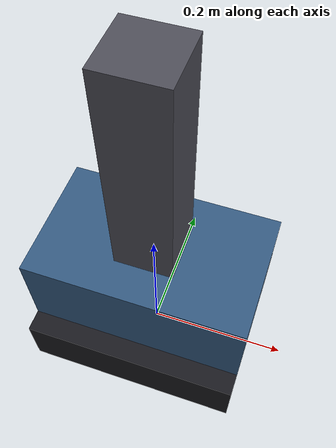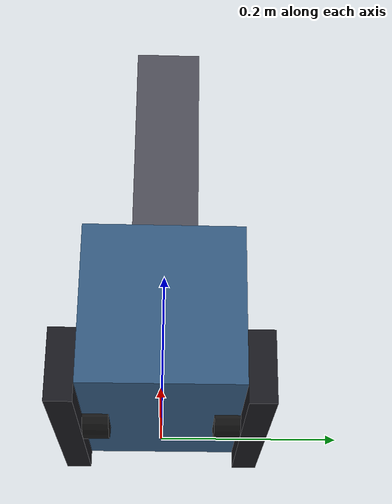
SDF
<?xml version="1.0"?>
<!-- 자동 생성: sim_gazebo/scripts/make_robot.py
     전체 30x18x50cm (폭 18cm 실기값)
     헐 18cm + 마스트 30cm, 카메라 45cm
     ※ 탱크 궤도는 차동구동 근사. 회전 미끄러짐 수치는 신뢰하지 말 것. -->
<sdf version="1.10">
  <model name="agv">
    <link name="base_link">
      <pose>0 0 0.1100 0 0 0</pose>
      <inertial>
        <pose>0 0 -0.02 0 0 0</pose>
        <mass>8.0</mass>
        <inertia><ixx>0.0432</ixx><iyy>0.0816</iyy><izz>0.0816</izz>
          <ixy>0</ixy><ixz>0</ixz><iyz>0</iyz></inertia>
      </inertial>
      <collision name="col_hull">
        <pose>0.000 0.000 0.000 0 0 0</pose>
        <geometry><box><size>0.300 0.180 0.180</size></box></geometry>
      </collision>
      <visual name="vis_hull">
        <pose>0.000 0.000 0.000 0 0 0</pose>
        <geometry><box><size>0.300 0.180 0.180</size></box></geometry>
        <material><ambient>0.20 0.35 0.50 1</ambient><diffuse>0.20 0.35 0.50 1</diffuse></material>
      </visual>
      <visual name="vis_track_l">
        <pose>0.000 0.105 -0.070 0 0 0</pose>
        <geometry><box><size>0.300 0.030 0.080</size></box></geometry>
        <material><ambient>0.10 0.10 0.12 1</ambient><diffuse>0.10 0.10 0.12 1</diffuse></material>
      </visual>
      <visual name="vis_track_r">
        <pose>0.000 -0.105 -0.070 0 0 0</pose>
        <geometry><box><size>0.300 0.030 0.080</size></box></geometry>
        <material><ambient>0.10 0.10 0.12 1</ambient><diffuse>0.10 0.10 0.12 1</diffuse></material>
      </visual>
      <collision name="col_mast">
        <pose>0.000 0.000 0.240 0 0 0</pose>
        <geometry><box><size>0.080 0.080 0.300</size></box></geometry>
      </collision>
      <visual name="vis_mast">
        <pose>0.000 0.000 0.240 0 0 0</pose>
        <geometry><box><size>0.080 0.080 0.300</size></box></geometry>
        <material><ambient>0.30 0.30 0.34 1</ambient><diffuse>0.30 0.30 0.34 1</diffuse></material>
      </visual>
      <collision name="col_caster_f">
        <pose>0.120 0 -0.0840 0 0 0</pose>
        <geometry><sphere><radius>0.020</radius></sphere></geometry>
        <surface><friction><ode><mu>0.0</mu><mu2>0.0</mu2></ode></friction>
          <bounce><restitution_coefficient>0</restitution_coefficient></bounce></surface>
      </collision>
      <collision name="col_caster_r">
        <pose>-0.120 0 -0.0840 0 0 0</pose>
        <geometry><sphere><radius>0.020</radius></sphere></geometry>
        <surface><friction><ode><mu>0.0</mu><mu2>0.0</mu2></ode></friction>
          <bounce><restitution_coefficient>0</restitution_coefficient></bounce></surface>
      </collision>

      <sensor name="front_camera" type="camera">
        <pose>0.150 0 0.340 0 0 0</pose>
        <update_rate>20</update_rate><topic>camera</topic>
        <camera>
          <horizontal_fov>1.08210</horizontal_fov>
          <image><width>640</width><height>480</height><format>R8G8B8</format></image>
          <clip><near>0.05</near><far>50</far></clip>
          <distortion><k1>0</k1><k2>0</k2><k3>0</k3><p1>0</p1><p2>0</p2></distortion>
        </camera>
        <always_on>1</always_on>
      </sensor>

      <sensor name="tof_left" type="gpu_lidar">
        <pose>0 0.120 -0.030 0 0 1.5708</pose>
        <update_rate>20</update_rate><topic>tof_left</topic>
        <lidar>
          <scan><horizontal><samples>1</samples>
            <min_angle>0</min_angle><max_angle>0</max_angle></horizontal></scan>
          <range><min>0.02</min><max>0.80</max>
            <resolution>0.001</resolution></range>
        </lidar>
        <always_on>1</always_on>
      </sensor>

      <sensor name="tof_right" type="gpu_lidar">
        <pose>0 -0.120 -0.030 0 0 -1.5708</pose>
        <update_rate>20</update_rate><topic>tof_right</topic>
        <lidar>
          <scan><horizontal><samples>1</samples>
            <min_angle>0</min_angle><max_angle>0</max_angle></horizontal></scan>
          <range><min>0.02</min><max>0.80</max>
            <resolution>0.001</resolution></range>
        </lidar>
        <always_on>1</always_on>
      </sensor>
    </link>

    <link name="wheel_left">
      <pose>0 0.0850 0.0330 0 0 0</pose>
      <inertial><mass>0.4</mass>
        <inertia><ixx>0.001</ixx><iyy>0.001</iyy><izz>0.001</izz>
          <ixy>0</ixy><ixz>0</ixz><iyz>0</iyz></inertia></inertial>
      <collision name="c">
        <geometry><sphere><radius>0.0330</radius></sphere></geometry>
        <surface><friction><ode><mu>2.0</mu><mu2>2.0</mu2>
          <slip1>0.0</slip1><slip2>0.0</slip2></ode></friction>
          <contact><ode><kp>1e6</kp><kd>100</kd></ode></contact></surface>
      </collision>
      <visual name="v">
        <pose>0 0 0 1.5708 0 0</pose>
        <geometry><cylinder><radius>0.0330</radius><length>0.05</length></cylinder></geometry>
        <material><ambient>0.05 0.05 0.05 1</ambient><diffuse>0.1 0.1 0.1 1</diffuse></material>
      </visual>
    </link>
    <joint name="wheel_left_joint" type="revolute">
      <parent>base_link</parent><child>wheel_left</child>
      <axis><xyz expressed_in="__model__">0 1 0</xyz>
        <limit><lower>-1e16</lower><upper>1e16</upper></limit></axis>
    </joint>

    <link name="wheel_right">
      <pose>0 -0.0850 0.0330 0 0 0</pose>
      <inertial><mass>0.4</mass>
        <inertia><ixx>0.001</ixx><iyy>0.001</iyy><izz>0.001</izz>
          <ixy>0</ixy><ixz>0</ixz><iyz>0</iyz></inertia></inertial>
      <collision name="c">
        <geometry><sphere><radius>0.0330</radius></sphere></geometry>
        <surface><friction><ode><mu>2.0</mu><mu2>2.0</mu2>
          <slip1>0.0</slip1><slip2>0.0</slip2></ode></friction>
          <contact><ode><kp>1e6</kp><kd>100</kd></ode></contact></surface>
      </collision>
      <visual name="v">
        <pose>0 0 0 1.5708 0 0</pose>
        <geometry><cylinder><radius>0.0330</radius><length>0.05</length></cylinder></geometry>
        <material><ambient>0.05 0.05 0.05 1</ambient><diffuse>0.1 0.1 0.1 1</diffuse></material>
      </visual>
    </link>
    <joint name="wheel_right_joint" type="revolute">
      <parent>base_link</parent><child>wheel_right</child>
      <axis><xyz expressed_in="__model__">0 1 0</xyz>
        <limit><lower>-1e16</lower><upper>1e16</upper></limit></axis>
    </joint>

    <plugin filename="gz-sim-diff-drive-system" name="gz::sim::systems::DiffDrive">
      <left_joint>wheel_left_joint</left_joint>
      <right_joint>wheel_right_joint</right_joint>
      <wheel_separation>0.17</wheel_separation>
      <wheel_radius>0.033</wheel_radius>
      <topic>cmd_vel</topic>
      <odom_topic>odom</odom_topic>
      <frame_id>odom</frame_id><child_frame_id>base_link</child_frame_id>
    </plugin>
  </model>
</sdf>
